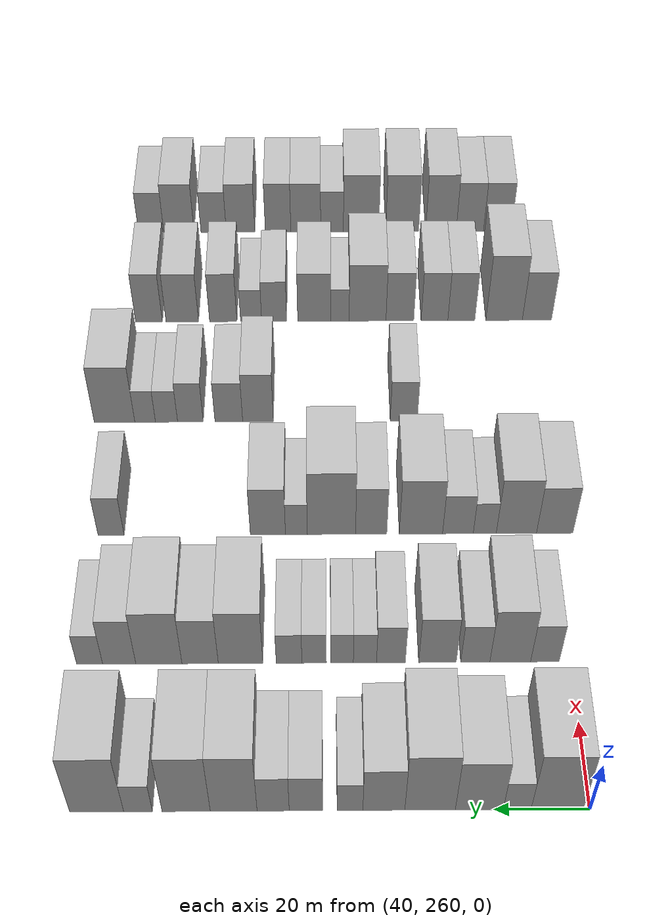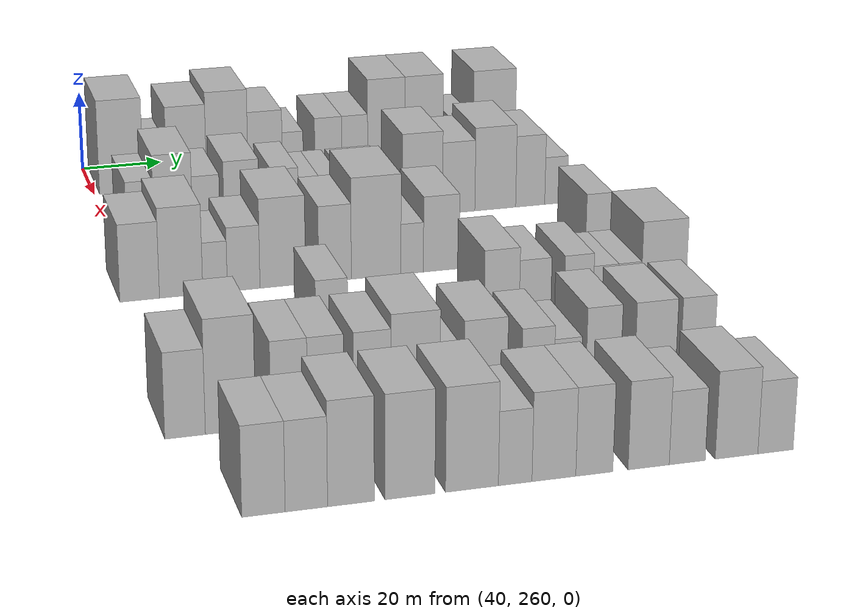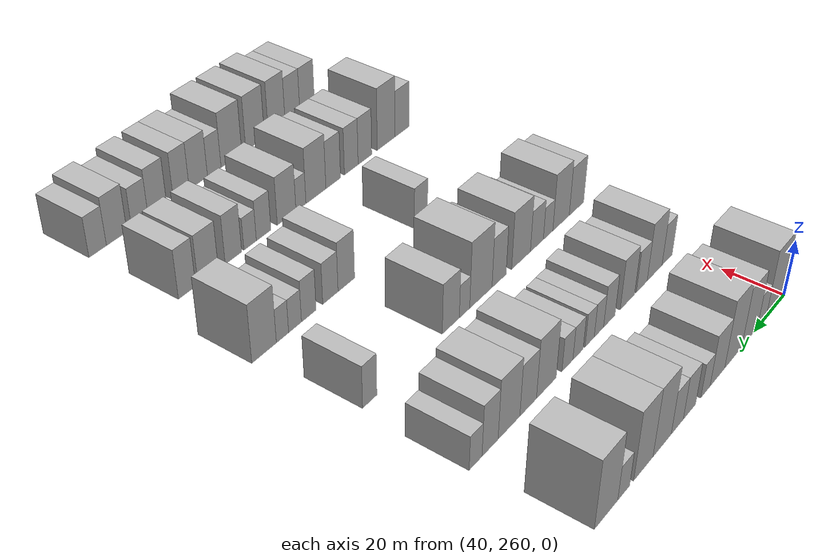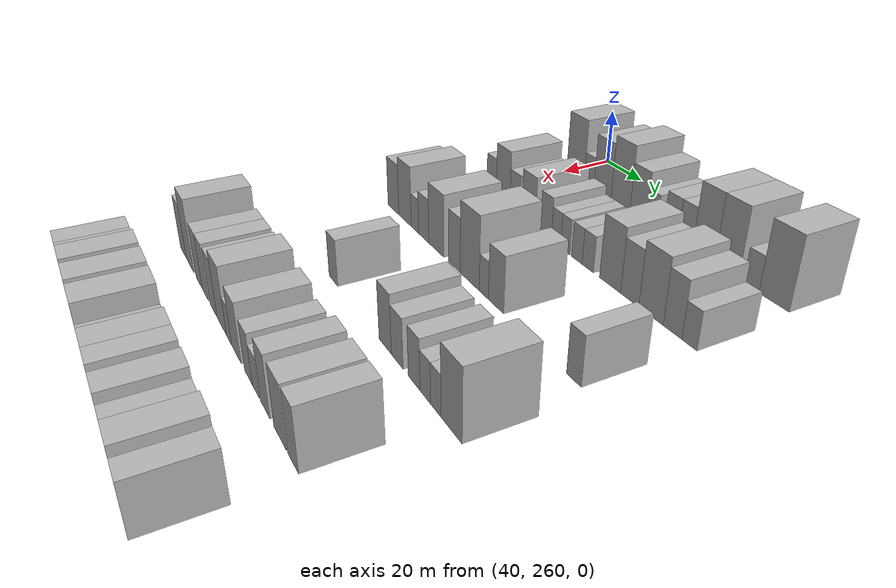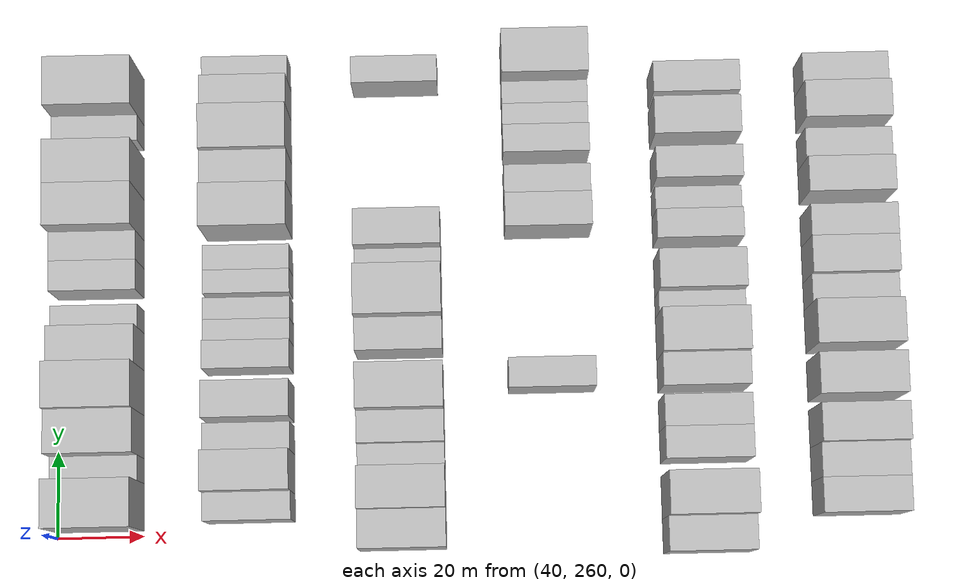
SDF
<sdf version="1.6">
 <world name="default">
  <model name="building_98">
   <static>1</static>
   <pose>50.0000 266.7937 0 0.000000 0.000000 0.000000</pose>
   <link name="link">
    <pose>0 0 12.00 0 0 0</pose>
    <collision name="collision"><geometry><box><size>20.0000 10.9603 24.0000</size></box></geometry></collision>
    <visual name="visual">
     <cast_shadows>0</cast_shadows>
     <geometry><box><size>20.0000 10.9603 24.0000</size></box></geometry>
     <material>
      <script>
       <uri>model://HANNAS_wall/materials/scripts</uri>
       <uri>model://HANNAS_wall/materials/textures</uri>
       <name>vrc/HANNAS_wall</name>
      </script>
     </material>
    </visual>
   </link>
  </model>
  <model name="building_99">
   <static>1</static>
   <pose>50.0000 275.1832 0 0.000000 0.000000 0.000000</pose>
   <link name="link">
    <pose>0 0 6.00 0 0 0</pose>
    <collision name="collision"><geometry><box><size>20.0000 5.8187 12.0000</size></box></geometry></collision>
    <visual name="visual">
     <cast_shadows>0</cast_shadows>
     <geometry><box><size>20.0000 5.8187 12.0000</size></box></geometry>
     <material>
      <script>
       <uri>model://HANNAS_wall/materials/scripts</uri>
       <uri>model://HANNAS_wall/materials/textures</uri>
       <name>vrc/HANNAS_wall</name>
      </script>
     </material>
    </visual>
   </link>
  </model>
  <model name="building_100">
   <static>1</static>
   <pose>50.0000 283.0935 0 0.000000 0.000000 0.000000</pose>
   <link name="link">
    <pose>0 0 10.50 0 0 0</pose>
    <collision name="collision"><geometry><box><size>20.0000 10.0018 21.0000</size></box></geometry></collision>
    <visual name="visual">
     <cast_shadows>0</cast_shadows>
     <geometry><box><size>20.0000 10.0018 21.0000</size></box></geometry>
     <material>
      <script>
       <uri>model://HANNAS_wall/materials/scripts</uri>
       <uri>model://HANNAS_wall/materials/textures</uri>
       <name>vrc/HANNAS_wall</name>
      </script>
     </material>
    </visual>
   </link>
  </model>
  <model name="building_101">
   <static>1</static>
   <pose>50.0000 293.3723 0 0.000000 0.000000 0.000000</pose>
   <link name="link">
    <pose>0 0 12.00 0 0 0</pose>
    <collision name="collision"><geometry><box><size>20.0000 10.5558 24.0000</size></box></geometry></collision>
    <visual name="visual">
     <cast_shadows>0</cast_shadows>
     <geometry><box><size>20.0000 10.5558 24.0000</size></box></geometry>
     <material>
      <script>
       <uri>model://HANNAS_wall/materials/scripts</uri>
       <uri>model://HANNAS_wall/materials/textures</uri>
       <name>vrc/HANNAS_wall</name>
      </script>
     </material>
    </visual>
   </link>
  </model>
  <model name="building_102">
   <static>1</static>
   <pose>50.0000 303.0368 0 0.000000 0.000000 0.000000</pose>
   <link name="link">
    <pose>0 0 9.00 0 0 0</pose>
    <collision name="collision"><geometry><box><size>20.0000 8.7731 18.0000</size></box></geometry></collision>
    <visual name="visual">
     <cast_shadows>0</cast_shadows>
     <geometry><box><size>20.0000 8.7731 18.0000</size></box></geometry>
     <material>
      <script>
       <uri>model://HANNAS_wall/materials/scripts</uri>
       <uri>model://HANNAS_wall/materials/textures</uri>
       <name>vrc/HANNAS_wall</name>
      </script>
     </material>
    </visual>
   </link>
  </model>
  <model name="building_103">
   <static>1</static>
   <pose>50.0000 310.1056 0 0.000000 0.000000 0.000000</pose>
   <link name="link">
    <pose>0 0 6.00 0 0 0</pose>
    <collision name="collision"><geometry><box><size>20.0000 5.3647 12.0000</size></box></geometry></collision>
    <visual name="visual">
     <cast_shadows>0</cast_shadows>
     <geometry><box><size>20.0000 5.3647 12.0000</size></box></geometry>
     <material>
      <script>
       <uri>model://HANNAS_wall/materials/scripts</uri>
       <uri>model://HANNAS_wall/materials/textures</uri>
       <name>vrc/HANNAS_wall</name>
      </script>
     </material>
    </visual>
   </link>
  </model>
  <model name="building_104">
   <static>1</static>
   <pose>50.0000 319.2848 0 0.000000 0.000000 0.000000</pose>
   <link name="link">
    <pose>0 0 7.50 0 0 0</pose>
    <collision name="collision"><geometry><box><size>20.0000 6.9936 15.0000</size></box></geometry></collision>
    <visual name="visual">
     <cast_shadows>0</cast_shadows>
     <geometry><box><size>20.0000 6.9936 15.0000</size></box></geometry>
     <material>
      <script>
       <uri>model://HANNAS_wall/materials/scripts</uri>
       <uri>model://HANNAS_wall/materials/textures</uri>
       <name>vrc/HANNAS_wall</name>
      </script>
     </material>
    </visual>
   </link>
  </model>
  <model name="building_105">
   <static>1</static>
   <pose>50.0000 326.1357 0 0.000000 0.000000 0.000000</pose>
   <link name="link">
    <pose>0 0 7.50 0 0 0</pose>
    <collision name="collision"><geometry><box><size>20.0000 6.7082 15.0000</size></box></geometry></collision>
    <visual name="visual">
     <cast_shadows>0</cast_shadows>
     <geometry><box><size>20.0000 6.7082 15.0000</size></box></geometry>
     <material>
      <script>
       <uri>model://HANNAS_wall/materials/scripts</uri>
       <uri>model://HANNAS_wall/materials/textures</uri>
       <name>vrc/HANNAS_wall</name>
      </script>
     </material>
    </visual>
   </link>
  </model>
  <model name="building_106">
   <static>1</static>
   <pose>50.0000 334.3753 0 0.000000 0.000000 0.000000</pose>
   <link name="link">
    <pose>0 0 12.00 0 0 0</pose>
    <collision name="collision"><geometry><box><size>20.0000 9.7709 24.0000</size></box></geometry></collision>
    <visual name="visual">
     <cast_shadows>0</cast_shadows>
     <geometry><box><size>20.0000 9.7709 24.0000</size></box></geometry>
     <material>
      <script>
       <uri>model://HANNAS_wall/materials/scripts</uri>
       <uri>model://HANNAS_wall/materials/textures</uri>
       <name>vrc/HANNAS_wall</name>
      </script>
     </material>
    </visual>
   </link>
  </model>
  <model name="building_107">
   <static>1</static>
   <pose>50.0000 344.2890 0 0.000000 0.000000 0.000000</pose>
   <link name="link">
    <pose>0 0 12.00 0 0 0</pose>
    <collision name="collision"><geometry><box><size>20.0000 10.0566 24.0000</size></box></geometry></collision>
    <visual name="visual">
     <cast_shadows>0</cast_shadows>
     <geometry><box><size>20.0000 10.0566 24.0000</size></box></geometry>
     <material>
      <script>
       <uri>model://HANNAS_wall/materials/scripts</uri>
       <uri>model://HANNAS_wall/materials/textures</uri>
       <name>vrc/HANNAS_wall</name>
      </script>
     </material>
    </visual>
   </link>
  </model>
  <model name="building_108">
   <static>1</static>
   <pose>50.0000 354.3158 0 0.000000 0.000000 0.000000</pose>
   <link name="link">
    <pose>0 0 6.00 0 0 0</pose>
    <collision name="collision"><geometry><box><size>20.0000 5.9970 12.0000</size></box></geometry></collision>
    <visual name="visual">
     <cast_shadows>0</cast_shadows>
     <geometry><box><size>20.0000 5.9970 12.0000</size></box></geometry>
     <material>
      <script>
       <uri>model://HANNAS_wall/materials/scripts</uri>
       <uri>model://HANNAS_wall/materials/textures</uri>
       <name>vrc/HANNAS_wall</name>
      </script>
     </material>
    </visual>
   </link>
  </model>
  <model name="building_109">
   <static>1</static>
   <pose>50.0000 362.9555 0 0.000000 0.000000 0.000000</pose>
   <link name="link">
    <pose>0 0 12.00 0 0 0</pose>
    <collision name="collision"><geometry><box><size>20.0000 11.2824 24.0000</size></box></geometry></collision>
    <visual name="visual">
     <cast_shadows>0</cast_shadows>
     <geometry><box><size>20.0000 11.2824 24.0000</size></box></geometry>
     <material>
      <script>
       <uri>model://HANNAS_wall/materials/scripts</uri>
       <uri>model://HANNAS_wall/materials/textures</uri>
       <name>vrc/HANNAS_wall</name>
      </script>
     </material>
    </visual>
   </link>
  </model>
  <model name="building_228">
   <static>1</static>
   <pose>85.0000 265.8231 0 0.000000 0.000000 0.000000</pose>
   <link name="link">
    <pose>0 0 7.50 0 0 0</pose>
    <collision name="collision"><geometry><box><size>20.0000 6.4290 15.0000</size></box></geometry></collision>
    <visual name="visual">
     <cast_shadows>0</cast_shadows>
     <geometry><box><size>20.0000 6.4290 15.0000</size></box></geometry>
     <material>
      <script>
       <uri>model://HANNAS_wall/materials/scripts</uri>
       <uri>model://HANNAS_wall/materials/textures</uri>
       <name>vrc/HANNAS_wall</name>
      </script>
     </material>
    </visual>
   </link>
  </model>
  <model name="building_229">
   <static>1</static>
   <pose>85.0000 273.6095 0 0.000000 0.000000 0.000000</pose>
   <link name="link">
    <pose>0 0 10.50 0 0 0</pose>
    <collision name="collision"><geometry><box><size>20.0000 9.1437 21.0000</size></box></geometry></collision>
    <visual name="visual">
     <cast_shadows>0</cast_shadows>
     <geometry><box><size>20.0000 9.1437 21.0000</size></box></geometry>
     <material>
      <script>
       <uri>model://HANNAS_wall/materials/scripts</uri>
       <uri>model://HANNAS_wall/materials/textures</uri>
       <name>vrc/HANNAS_wall</name>
      </script>
     </material>
    </visual>
   </link>
  </model>
  <model name="building_230">
   <static>1</static>
   <pose>85.0000 281.4469 0 0.000000 0.000000 0.000000</pose>
   <link name="link">
    <pose>0 0 7.50 0 0 0</pose>
    <collision name="collision"><geometry><box><size>20.0000 6.5311 15.0000</size></box></geometry></collision>
    <visual name="visual">
     <cast_shadows>0</cast_shadows>
     <geometry><box><size>20.0000 6.5311 15.0000</size></box></geometry>
     <material>
      <script>
       <uri>model://HANNAS_wall/materials/scripts</uri>
       <uri>model://HANNAS_wall/materials/textures</uri>
       <name>vrc/HANNAS_wall</name>
      </script>
     </material>
    </visual>
   </link>
  </model>
  <model name="building_231">
   <static>1</static>
   <pose>85.0000 289.9295 0 0.000000 0.000000 0.000000</pose>
   <link name="link">
    <pose>0 0 9.00 0 0 0</pose>
    <collision name="collision"><geometry><box><size>20.0000 8.4343 18.0000</size></box></geometry></collision>
    <visual name="visual">
     <cast_shadows>0</cast_shadows>
     <geometry><box><size>20.0000 8.4343 18.0000</size></box></geometry>
     <material>
      <script>
       <uri>model://HANNAS_wall/materials/scripts</uri>
       <uri>model://HANNAS_wall/materials/textures</uri>
       <name>vrc/HANNAS_wall</name>
      </script>
     </material>
    </visual>
   </link>
  </model>
  <model name="building_232">
   <static>1</static>
   <pose>85.0000 300.3838 0 0.000000 0.000000 0.000000</pose>
   <link name="link">
    <pose>0 0 7.50 0 0 0</pose>
    <collision name="collision"><geometry><box><size>20.0000 6.4742 15.0000</size></box></geometry></collision>
    <visual name="visual">
     <cast_shadows>0</cast_shadows>
     <geometry><box><size>20.0000 6.4742 15.0000</size></box></geometry>
     <material>
      <script>
       <uri>model://HANNAS_wall/materials/scripts</uri>
       <uri>model://HANNAS_wall/materials/textures</uri>
       <name>vrc/HANNAS_wall</name>
      </script>
     </material>
    </visual>
   </link>
  </model>
  <model name="building_233">
   <static>1</static>
   <pose>85.0000 306.2199 0 0.000000 0.000000 0.000000</pose>
   <link name="link">
    <pose>0 0 6.00 0 0 0</pose>
    <collision name="collision"><geometry><box><size>20.0000 5.1980 12.0000</size></box></geometry></collision>
    <visual name="visual">
     <cast_shadows>0</cast_shadows>
     <geometry><box><size>20.0000 5.1980 12.0000</size></box></geometry>
     <material>
      <script>
       <uri>model://HANNAS_wall/materials/scripts</uri>
       <uri>model://HANNAS_wall/materials/textures</uri>
       <name>vrc/HANNAS_wall</name>
      </script>
     </material>
    </visual>
   </link>
  </model>
  <model name="building_234">
   <static>1</static>
   <pose>85.0000 311.3299 0 0.000000 0.000000 0.000000</pose>
   <link name="link">
    <pose>0 0 6.00 0 0 0</pose>
    <collision name="collision"><geometry><box><size>20.0000 5.0220 12.0000</size></box></geometry></collision>
    <visual name="visual">
     <cast_shadows>0</cast_shadows>
     <geometry><box><size>20.0000 5.0220 12.0000</size></box></geometry>
     <material>
      <script>
       <uri>model://HANNAS_wall/materials/scripts</uri>
       <uri>model://HANNAS_wall/materials/textures</uri>
       <name>vrc/HANNAS_wall</name>
      </script>
     </material>
    </visual>
   </link>
  </model>
  <model name="building_235">
   <static>1</static>
   <pose>85.0000 317.5918 0 0.000000 0.000000 0.000000</pose>
   <link name="link">
    <pose>0 0 6.00 0 0 0</pose>
    <collision name="collision"><geometry><box><size>20.0000 5.5017 12.0000</size></box></geometry></collision>
    <visual name="visual">
     <cast_shadows>0</cast_shadows>
     <geometry><box><size>20.0000 5.5017 12.0000</size></box></geometry>
     <material>
      <script>
       <uri>model://HANNAS_wall/materials/scripts</uri>
       <uri>model://HANNAS_wall/materials/textures</uri>
       <name>vrc/HANNAS_wall</name>
      </script>
     </material>
    </visual>
   </link>
  </model>
  <model name="building_236">
   <static>1</static>
   <pose>85.0000 323.2128 0 0.000000 0.000000 0.000000</pose>
   <link name="link">
    <pose>0 0 6.00 0 0 0</pose>
    <collision name="collision"><geometry><box><size>20.0000 5.7402 12.0000</size></box></geometry></collision>
    <visual name="visual">
     <cast_shadows>0</cast_shadows>
     <geometry><box><size>20.0000 5.7402 12.0000</size></box></geometry>
     <material>
      <script>
       <uri>model://HANNAS_wall/materials/scripts</uri>
       <uri>model://HANNAS_wall/materials/textures</uri>
       <name>vrc/HANNAS_wall</name>
      </script>
     </material>
    </visual>
   </link>
  </model>
  <model name="building_237">
   <static>1</static>
   <pose>85.0000 334.0777 0 0.000000 0.000000 0.000000</pose>
   <link name="link">
    <pose>0 0 10.50 0 0 0</pose>
    <collision name="collision"><geometry><box><size>20.0000 9.9896 21.0000</size></box></geometry></collision>
    <visual name="visual">
     <cast_shadows>0</cast_shadows>
     <geometry><box><size>20.0000 9.9896 21.0000</size></box></geometry>
     <material>
      <script>
       <uri>model://HANNAS_wall/materials/scripts</uri>
       <uri>model://HANNAS_wall/materials/textures</uri>
       <name>vrc/HANNAS_wall</name>
      </script>
     </material>
    </visual>
   </link>
  </model>
  <model name="building_238">
   <static>1</static>
   <pose>85.0000 343.1449 0 0.000000 0.000000 0.000000</pose>
   <link name="link">
    <pose>0 0 9.00 0 0 0</pose>
    <collision name="collision"><geometry><box><size>20.0000 8.1449 18.0000</size></box></geometry></collision>
    <visual name="visual">
     <cast_shadows>0</cast_shadows>
     <geometry><box><size>20.0000 8.1449 18.0000</size></box></geometry>
     <material>
      <script>
       <uri>model://HANNAS_wall/materials/scripts</uri>
       <uri>model://HANNAS_wall/materials/textures</uri>
       <name>vrc/HANNAS_wall</name>
      </script>
     </material>
    </visual>
   </link>
  </model>
  <model name="building_239">
   <static>1</static>
   <pose>85.0000 352.3883 0 0.000000 0.000000 0.000000</pose>
   <link name="link">
    <pose>0 0 10.50 0 0 0</pose>
    <collision name="collision"><geometry><box><size>20.0000 10.3419 21.0000</size></box></geometry></collision>
    <visual name="visual">
     <cast_shadows>0</cast_shadows>
     <geometry><box><size>20.0000 10.3419 21.0000</size></box></geometry>
     <material>
      <script>
       <uri>model://HANNAS_wall/materials/scripts</uri>
       <uri>model://HANNAS_wall/materials/textures</uri>
       <name>vrc/HANNAS_wall</name>
      </script>
     </material>
    </visual>
   </link>
  </model>
  <model name="building_240">
   <static>1</static>
   <pose>85.0000 361.2696 0 0.000000 0.000000 0.000000</pose>
   <link name="link">
    <pose>0 0 9.00 0 0 0</pose>
    <collision name="collision"><geometry><box><size>20.0000 7.4207 18.0000</size></box></geometry></collision>
    <visual name="visual">
     <cast_shadows>0</cast_shadows>
     <geometry><box><size>20.0000 7.4207 18.0000</size></box></geometry>
     <material>
      <script>
       <uri>model://HANNAS_wall/materials/scripts</uri>
       <uri>model://HANNAS_wall/materials/textures</uri>
       <name>vrc/HANNAS_wall</name>
      </script>
     </material>
    </visual>
   </link>
  </model>
  <model name="building_241">
   <static>1</static>
   <pose>85.0000 367.8834 0 0.000000 0.000000 0.000000</pose>
   <link name="link">
    <pose>0 0 6.00 0 0 0</pose>
    <collision name="collision"><geometry><box><size>20.0000 5.8069 12.0000</size></box></geometry></collision>
    <visual name="visual">
     <cast_shadows>0</cast_shadows>
     <geometry><box><size>20.0000 5.8069 12.0000</size></box></geometry>
     <material>
      <script>
       <uri>model://HANNAS_wall/materials/scripts</uri>
       <uri>model://HANNAS_wall/materials/textures</uri>
       <name>vrc/HANNAS_wall</name>
      </script>
     </material>
    </visual>
   </link>
  </model>
  <model name="building_338">
   <static>1</static>
   <pose>120.0000 259.9100 0 0.000000 0.000000 0.000000</pose>
   <link name="link">
    <pose>0 0 9.00 0 0 0</pose>
    <collision name="collision"><geometry><box><size>20.0000 8.7608 18.0000</size></box></geometry></collision>
    <visual name="visual">
     <cast_shadows>0</cast_shadows>
     <geometry><box><size>20.0000 8.7608 18.0000</size></box></geometry>
     <material>
      <script>
       <uri>model://HANNAS_wall/materials/scripts</uri>
       <uri>model://HANNAS_wall/materials/textures</uri>
       <name>vrc/HANNAS_wall</name>
      </script>
     </material>
    </visual>
   </link>
  </model>
  <model name="building_339">
   <static>1</static>
   <pose>120.0000 269.1196 0 0.000000 0.000000 0.000000</pose>
   <link name="link">
    <pose>0 0 10.50 0 0 0</pose>
    <collision name="collision"><geometry><box><size>20.0000 9.6585 21.0000</size></box></geometry></collision>
    <visual name="visual">
     <cast_shadows>0</cast_shadows>
     <geometry><box><size>20.0000 9.6585 21.0000</size></box></geometry>
     <material>
      <script>
       <uri>model://HANNAS_wall/materials/scripts</uri>
       <uri>model://HANNAS_wall/materials/textures</uri>
       <name>vrc/HANNAS_wall</name>
      </script>
     </material>
    </visual>
   </link>
  </model>
  <model name="building_340">
   <static>1</static>
   <pose>120.0000 276.7071 0 0.000000 0.000000 0.000000</pose>
   <link name="link">
    <pose>0 0 6.00 0 0 0</pose>
    <collision name="collision"><geometry><box><size>20.0000 5.5166 12.0000</size></box></geometry></collision>
    <visual name="visual">
     <cast_shadows>0</cast_shadows>
     <geometry><box><size>20.0000 5.5166 12.0000</size></box></geometry>
     <material>
      <script>
       <uri>model://HANNAS_wall/materials/scripts</uri>
       <uri>model://HANNAS_wall/materials/textures</uri>
       <name>vrc/HANNAS_wall</name>
      </script>
     </material>
    </visual>
   </link>
  </model>
  <model name="building_341">
   <static>1</static>
   <pose>120.0000 283.1479 0 0.000000 0.000000 0.000000</pose>
   <link name="link">
    <pose>0 0 7.50 0 0 0</pose>
    <collision name="collision"><geometry><box><size>20.0000 7.3648 15.0000</size></box></geometry></collision>
    <visual name="visual">
     <cast_shadows>0</cast_shadows>
     <geometry><box><size>20.0000 7.3648 15.0000</size></box></geometry>
     <material>
      <script>
       <uri>model://HANNAS_wall/materials/scripts</uri>
       <uri>model://HANNAS_wall/materials/textures</uri>
       <name>vrc/HANNAS_wall</name>
      </script>
     </material>
    </visual>
   </link>
  </model>
  <model name="building_342">
   <static>1</static>
   <pose>120.0000 292.0150 0 0.000000 0.000000 0.000000</pose>
   <link name="link">
    <pose>0 0 10.50 0 0 0</pose>
    <collision name="collision"><geometry><box><size>20.0000 10.3695 21.0000</size></box></geometry></collision>
    <visual name="visual">
     <cast_shadows>0</cast_shadows>
     <geometry><box><size>20.0000 10.3695 21.0000</size></box></geometry>
     <material>
      <script>
       <uri>model://HANNAS_wall/materials/scripts</uri>
       <uri>model://HANNAS_wall/materials/textures</uri>
       <name>vrc/HANNAS_wall</name>
      </script>
     </material>
    </visual>
   </link>
  </model>
  <model name="building_343">
   <static>1</static>
   <pose>120.0000 303.9533 0 0.000000 0.000000 0.000000</pose>
   <link name="link">
    <pose>0 0 9.00 0 0 0</pose>
    <collision name="collision"><geometry><box><size>20.0000 7.5070 18.0000</size></box></geometry></collision>
    <visual name="visual">
     <cast_shadows>0</cast_shadows>
     <geometry><box><size>20.0000 7.5070 18.0000</size></box></geometry>
     <material>
      <script>
       <uri>model://HANNAS_wall/materials/scripts</uri>
       <uri>model://HANNAS_wall/materials/textures</uri>
       <name>vrc/HANNAS_wall</name>
      </script>
     </material>
    </visual>
   </link>
  </model>
  <model name="building_344">
   <static>1</static>
   <pose>120.0000 313.4700 0 0.000000 0.000000 0.000000</pose>
   <link name="link">
    <pose>0 0 12.00 0 0 0</pose>
    <collision name="collision"><geometry><box><size>20.0000 11.5264 24.0000</size></box></geometry></collision>
    <visual name="visual">
     <cast_shadows>0</cast_shadows>
     <geometry><box><size>20.0000 11.5264 24.0000</size></box></geometry>
     <material>
      <script>
       <uri>model://HANNAS_wall/materials/scripts</uri>
       <uri>model://HANNAS_wall/materials/textures</uri>
       <name>vrc/HANNAS_wall</name>
      </script>
     </material>
    </visual>
   </link>
  </model>
  <model name="building_345">
   <static>1</static>
   <pose>120.0000 321.8547 0 0.000000 0.000000 0.000000</pose>
   <link name="link">
    <pose>0 0 6.00 0 0 0</pose>
    <collision name="collision"><geometry><box><size>20.0000 5.2431 12.0000</size></box></geometry></collision>
    <visual name="visual">
     <cast_shadows>0</cast_shadows>
     <geometry><box><size>20.0000 5.2431 12.0000</size></box></geometry>
     <material>
      <script>
       <uri>model://HANNAS_wall/materials/scripts</uri>
       <uri>model://HANNAS_wall/materials/textures</uri>
       <name>vrc/HANNAS_wall</name>
      </script>
     </material>
    </visual>
   </link>
  </model>
  <model name="building_346">
   <static>1</static>
   <pose>120.0000 328.6796 0 0.000000 0.000000 0.000000</pose>
   <link name="link">
    <pose>0 0 9.00 0 0 0</pose>
    <collision name="collision"><geometry><box><size>20.0000 8.4067 18.0000</size></box></geometry></collision>
    <visual name="visual">
     <cast_shadows>0</cast_shadows>
     <geometry><box><size>20.0000 8.4067 18.0000</size></box></geometry>
     <material>
      <script>
       <uri>model://HANNAS_wall/materials/scripts</uri>
       <uri>model://HANNAS_wall/materials/textures</uri>
       <name>vrc/HANNAS_wall</name>
      </script>
     </material>
    </visual>
   </link>
  </model>
  <model name="building_347">
   <static>1</static>
   <pose>120.0000 366.2317 0 0.000000 0.000000 0.000000</pose>
   <link name="link">
    <pose>0 0 7.50 0 0 0</pose>
    <collision name="collision"><geometry><box><size>20.0000 6.2325 15.0000</size></box></geometry></collision>
    <visual name="visual">
     <cast_shadows>0</cast_shadows>
     <geometry><box><size>20.0000 6.2325 15.0000</size></box></geometry>
     <material>
      <script>
       <uri>model://HANNAS_wall/materials/scripts</uri>
       <uri>model://HANNAS_wall/materials/textures</uri>
       <name>vrc/HANNAS_wall</name>
      </script>
     </material>
    </visual>
   </link>
  </model>
  <model name="building_463">
   <static>1</static>
   <pose>155.0000 294.7608 0 0.000000 0.000000 0.000000</pose>
   <link name="link">
    <pose>0 0 7.50 0 0 0</pose>
    <collision name="collision"><geometry><box><size>20.0000 6.8893 15.0000</size></box></geometry></collision>
    <visual name="visual">
     <cast_shadows>0</cast_shadows>
     <geometry><box><size>20.0000 6.8893 15.0000</size></box></geometry>
     <material>
      <script>
       <uri>model://HANNAS_wall/materials/scripts</uri>
       <uri>model://HANNAS_wall/materials/textures</uri>
       <name>vrc/HANNAS_wall</name>
      </script>
     </material>
    </visual>
   </link>
  </model>
  <model name="building_464">
   <static>1</static>
   <pose>155.0000 331.9331 0 0.000000 0.000000 0.000000</pose>
   <link name="link">
    <pose>0 0 9.00 0 0 0</pose>
    <collision name="collision"><geometry><box><size>20.0000 7.8184 18.0000</size></box></geometry></collision>
    <visual name="visual">
     <cast_shadows>0</cast_shadows>
     <geometry><box><size>20.0000 7.8184 18.0000</size></box></geometry>
     <material>
      <script>
       <uri>model://HANNAS_wall/materials/scripts</uri>
       <uri>model://HANNAS_wall/materials/textures</uri>
       <name>vrc/HANNAS_wall</name>
      </script>
     </material>
    </visual>
   </link>
  </model>
  <model name="building_465">
   <static>1</static>
   <pose>155.0000 339.3729 0 0.000000 0.000000 0.000000</pose>
   <link name="link">
    <pose>0 0 7.50 0 0 0</pose>
    <collision name="collision"><geometry><box><size>20.0000 7.0613 15.0000</size></box></geometry></collision>
    <visual name="visual">
     <cast_shadows>0</cast_shadows>
     <geometry><box><size>20.0000 7.0613 15.0000</size></box></geometry>
     <material>
      <script>
       <uri>model://HANNAS_wall/materials/scripts</uri>
       <uri>model://HANNAS_wall/materials/textures</uri>
       <name>vrc/HANNAS_wall</name>
      </script>
     </material>
    </visual>
   </link>
  </model>
  <model name="building_466">
   <static>1</static>
   <pose>155.0000 349.1730 0 0.000000 0.000000 0.000000</pose>
   <link name="link">
    <pose>0 0 7.50 0 0 0</pose>
    <collision name="collision"><geometry><box><size>20.0000 6.5388 15.0000</size></box></geometry></collision>
    <visual name="visual">
     <cast_shadows>0</cast_shadows>
     <geometry><box><size>20.0000 6.5388 15.0000</size></box></geometry>
     <material>
      <script>
       <uri>model://HANNAS_wall/materials/scripts</uri>
       <uri>model://HANNAS_wall/materials/textures</uri>
       <name>vrc/HANNAS_wall</name>
      </script>
     </material>
    </visual>
   </link>
  </model>
  <model name="building_467">
   <static>1</static>
   <pose>155.0000 355.2627 0 0.000000 0.000000 0.000000</pose>
   <link name="link">
    <pose>0 0 6.00 0 0 0</pose>
    <collision name="collision"><geometry><box><size>20.0000 5.6404 12.0000</size></box></geometry></collision>
    <visual name="visual">
     <cast_shadows>0</cast_shadows>
     <geometry><box><size>20.0000 5.6404 12.0000</size></box></geometry>
     <material>
      <script>
       <uri>model://HANNAS_wall/materials/scripts</uri>
       <uri>model://HANNAS_wall/materials/textures</uri>
       <name>vrc/HANNAS_wall</name>
      </script>
     </material>
    </visual>
   </link>
  </model>
  <model name="building_468">
   <static>1</static>
   <pose>155.0000 360.7143 0 0.000000 0.000000 0.000000</pose>
   <link name="link">
    <pose>0 0 6.00 0 0 0</pose>
    <collision name="collision"><geometry><box><size>20.0000 5.2629 12.0000</size></box></geometry></collision>
    <visual name="visual">
     <cast_shadows>0</cast_shadows>
     <geometry><box><size>20.0000 5.2629 12.0000</size></box></geometry>
     <material>
      <script>
       <uri>model://HANNAS_wall/materials/scripts</uri>
       <uri>model://HANNAS_wall/materials/textures</uri>
       <name>vrc/HANNAS_wall</name>
      </script>
     </material>
    </visual>
   </link>
  </model>
  <model name="building_469">
   <static>1</static>
   <pose>155.0000 368.5051 0 0.000000 0.000000 0.000000</pose>
   <link name="link">
    <pose>0 0 10.50 0 0 0</pose>
    <collision name="collision"><geometry><box><size>20.0000 10.3186 21.0000</size></box></geometry></collision>
    <visual name="visual">
     <cast_shadows>0</cast_shadows>
     <geometry><box><size>20.0000 10.3186 21.0000</size></box></geometry>
     <material>
      <script>
       <uri>model://HANNAS_wall/materials/scripts</uri>
       <uri>model://HANNAS_wall/materials/textures</uri>
       <name>vrc/HANNAS_wall</name>
      </script>
     </material>
    </visual>
   </link>
  </model>
  <model name="building_578">
   <static>1</static>
   <pose>190.0000 257.3385 0 0.000000 0.000000 0.000000</pose>
   <link name="link">
    <pose>0 0 9.00 0 0 0</pose>
    <collision name="collision"><geometry><box><size>20.0000 7.9105 18.0000</size></box></geometry></collision>
    <visual name="visual">
     <cast_shadows>0</cast_shadows>
     <geometry><box><size>20.0000 7.9105 18.0000</size></box></geometry>
     <material>
      <script>
       <uri>model://HANNAS_wall/materials/scripts</uri>
       <uri>model://HANNAS_wall/materials/textures</uri>
       <name>vrc/HANNAS_wall</name>
      </script>
     </material>
    </visual>
   </link>
  </model>
  <model name="building_579">
   <static>1</static>
   <pose>190.0000 266.2223 0 0.000000 0.000000 0.000000</pose>
   <link name="link">
    <pose>0 0 12.00 0 0 0</pose>
    <collision name="collision"><geometry><box><size>20.0000 9.8571 24.0000</size></box></geometry></collision>
    <visual name="visual">
     <cast_shadows>0</cast_shadows>
     <geometry><box><size>20.0000 9.8571 24.0000</size></box></geometry>
     <material>
      <script>
       <uri>model://HANNAS_wall/materials/scripts</uri>
       <uri>model://HANNAS_wall/materials/textures</uri>
       <name>vrc/HANNAS_wall</name>
      </script>
     </material>
    </visual>
   </link>
  </model>
  <model name="building_580">
   <static>1</static>
   <pose>190.0000 277.8046 0 0.000000 0.000000 0.000000</pose>
   <link name="link">
    <pose>0 0 9.00 0 0 0</pose>
    <collision name="collision"><geometry><box><size>20.0000 7.3076 18.0000</size></box></geometry></collision>
    <visual name="visual">
     <cast_shadows>0</cast_shadows>
     <geometry><box><size>20.0000 7.3076 18.0000</size></box></geometry>
     <material>
      <script>
       <uri>model://HANNAS_wall/materials/scripts</uri>
       <uri>model://HANNAS_wall/materials/textures</uri>
       <name>vrc/HANNAS_wall</name>
      </script>
     </material>
    </visual>
   </link>
  </model>
  <model name="building_581">
   <static>1</static>
   <pose>190.0000 285.0741 0 0.000000 0.000000 0.000000</pose>
   <link name="link">
    <pose>0 0 9.00 0 0 0</pose>
    <collision name="collision"><geometry><box><size>20.0000 7.2314 18.0000</size></box></geometry></collision>
    <visual name="visual">
     <cast_shadows>0</cast_shadows>
     <geometry><box><size>20.0000 7.2314 18.0000</size></box></geometry>
     <material>
      <script>
       <uri>model://HANNAS_wall/materials/scripts</uri>
       <uri>model://HANNAS_wall/materials/textures</uri>
       <name>vrc/HANNAS_wall</name>
      </script>
     </material>
    </visual>
   </link>
  </model>
  <model name="building_582">
   <static>1</static>
   <pose>190.0000 294.4544 0 0.000000 0.000000 0.000000</pose>
   <link name="link">
    <pose>0 0 9.00 0 0 0</pose>
    <collision name="collision"><geometry><box><size>20.0000 7.5292 18.0000</size></box></geometry></collision>
    <visual name="visual">
     <cast_shadows>0</cast_shadows>
     <geometry><box><size>20.0000 7.5292 18.0000</size></box></geometry>
     <material>
      <script>
       <uri>model://HANNAS_wall/materials/scripts</uri>
       <uri>model://HANNAS_wall/materials/textures</uri>
       <name>vrc/HANNAS_wall</name>
      </script>
     </material>
    </visual>
   </link>
  </model>
  <model name="building_583">
   <static>1</static>
   <pose>190.0000 303.2090 0 0.000000 0.000000 0.000000</pose>
   <link name="link">
    <pose>0 0 10.50 0 0 0</pose>
    <collision name="collision"><geometry><box><size>20.0000 9.9799 21.0000</size></box></geometry></collision>
    <visual name="visual">
     <cast_shadows>0</cast_shadows>
     <geometry><box><size>20.0000 9.9799 21.0000</size></box></geometry>
     <material>
      <script>
       <uri>model://HANNAS_wall/materials/scripts</uri>
       <uri>model://HANNAS_wall/materials/textures</uri>
       <name>vrc/HANNAS_wall</name>
      </script>
     </material>
    </visual>
   </link>
  </model>
  <model name="building_584">
   <static>1</static>
   <pose>190.0000 310.6415 0 0.000000 0.000000 0.000000</pose>
   <link name="link">
    <pose>0 0 6.00 0 0 0</pose>
    <collision name="collision"><geometry><box><size>20.0000 4.8851 12.0000</size></box></geometry></collision>
    <visual name="visual">
     <cast_shadows>0</cast_shadows>
     <geometry><box><size>20.0000 4.8851 12.0000</size></box></geometry>
     <material>
      <script>
       <uri>model://HANNAS_wall/materials/scripts</uri>
       <uri>model://HANNAS_wall/materials/textures</uri>
       <name>vrc/HANNAS_wall</name>
      </script>
     </material>
    </visual>
   </link>
  </model>
  <model name="building_585">
   <static>1</static>
   <pose>190.0000 317.5747 0 0.000000 0.000000 0.000000</pose>
   <link name="link">
    <pose>0 0 9.00 0 0 0</pose>
    <collision name="collision"><geometry><box><size>20.0000 8.9813 18.0000</size></box></geometry></collision>
    <visual name="visual">
     <cast_shadows>0</cast_shadows>
     <geometry><box><size>20.0000 8.9813 18.0000</size></box></geometry>
     <material>
      <script>
       <uri>model://HANNAS_wall/materials/scripts</uri>
       <uri>model://HANNAS_wall/materials/textures</uri>
       <name>vrc/HANNAS_wall</name>
      </script>
     </material>
    </visual>
   </link>
  </model>
  <model name="building_586">
   <static>1</static>
   <pose>190.0000 328.4454 0 0.000000 0.000000 0.000000</pose>
   <link name="link">
    <pose>0 0 7.50 0 0 0</pose>
    <collision name="collision"><geometry><box><size>20.0000 6.7600 15.0000</size></box></geometry></collision>
    <visual name="visual">
     <cast_shadows>0</cast_shadows>
     <geometry><box><size>20.0000 6.7600 15.0000</size></box></geometry>
     <material>
      <script>
       <uri>model://HANNAS_wall/materials/scripts</uri>
       <uri>model://HANNAS_wall/materials/textures</uri>
       <name>vrc/HANNAS_wall</name>
      </script>
     </material>
    </visual>
   </link>
  </model>
  <model name="building_587">
   <static>1</static>
   <pose>190.0000 334.6692 0 0.000000 0.000000 0.000000</pose>
   <link name="link">
    <pose>0 0 6.00 0 0 0</pose>
    <collision name="collision"><geometry><box><size>20.0000 5.6876 12.0000</size></box></geometry></collision>
    <visual name="visual">
     <cast_shadows>0</cast_shadows>
     <geometry><box><size>20.0000 5.6876 12.0000</size></box></geometry>
     <material>
      <script>
       <uri>model://HANNAS_wall/materials/scripts</uri>
       <uri>model://HANNAS_wall/materials/textures</uri>
       <name>vrc/HANNAS_wall</name>
      </script>
     </material>
    </visual>
   </link>
  </model>
  <model name="building_588">
   <static>1</static>
   <pose>190.0000 342.2003 0 0.000000 0.000000 0.000000</pose>
   <link name="link">
    <pose>0 0 9.00 0 0 0</pose>
    <collision name="collision"><geometry><box><size>20.0000 7.3746 18.0000</size></box></geometry></collision>
    <visual name="visual">
     <cast_shadows>0</cast_shadows>
     <geometry><box><size>20.0000 7.3746 18.0000</size></box></geometry>
     <material>
      <script>
       <uri>model://HANNAS_wall/materials/scripts</uri>
       <uri>model://HANNAS_wall/materials/textures</uri>
       <name>vrc/HANNAS_wall</name>
      </script>
     </material>
    </visual>
   </link>
  </model>
  <model name="building_589">
   <static>1</static>
   <pose>190.0000 353.2803 0 0.000000 0.000000 0.000000</pose>
   <link name="link">
    <pose>0 0 9.00 0 0 0</pose>
    <collision name="collision"><geometry><box><size>20.0000 8.7853 18.0000</size></box></geometry></collision>
    <visual name="visual">
     <cast_shadows>0</cast_shadows>
     <geometry><box><size>20.0000 8.7853 18.0000</size></box></geometry>
     <material>
      <script>
       <uri>model://HANNAS_wall/materials/scripts</uri>
       <uri>model://HANNAS_wall/materials/textures</uri>
       <name>vrc/HANNAS_wall</name>
      </script>
     </material>
    </visual>
   </link>
  </model>
  <model name="building_590">
   <static>1</static>
   <pose>190.0000 362.2843 0 0.000000 0.000000 0.000000</pose>
   <link name="link">
    <pose>0 0 9.00 0 0 0</pose>
    <collision name="collision"><geometry><box><size>20.0000 7.2227 18.0000</size></box></geometry></collision>
    <visual name="visual">
     <cast_shadows>0</cast_shadows>
     <geometry><box><size>20.0000 7.2227 18.0000</size></box></geometry>
     <material>
      <script>
       <uri>model://HANNAS_wall/materials/scripts</uri>
       <uri>model://HANNAS_wall/materials/textures</uri>
       <name>vrc/HANNAS_wall</name>
      </script>
     </material>
    </visual>
   </link>
  </model>
  <model name="building_716">
   <static>1</static>
   <pose>225.0000 265.2340 0 0.000000 0.000000 0.000000</pose>
   <link name="link">
    <pose>0 0 9.00 0 0 0</pose>
    <collision name="collision"><geometry><box><size>20.0000 7.9551 18.0000</size></box></geometry></collision>
    <visual name="visual">
     <cast_shadows>0</cast_shadows>
     <geometry><box><size>20.0000 7.9551 18.0000</size></box></geometry>
     <material>
      <script>
       <uri>model://HANNAS_wall/materials/scripts</uri>
       <uri>model://HANNAS_wall/materials/textures</uri>
       <name>vrc/HANNAS_wall</name>
      </script>
     </material>
    </visual>
   </link>
  </model>
  <model name="building_717">
   <static>1</static>
   <pose>225.0000 273.1246 0 0.000000 0.000000 0.000000</pose>
   <link name="link">
    <pose>0 0 9.00 0 0 0</pose>
    <collision name="collision"><geometry><box><size>20.0000 7.8261 18.0000</size></box></geometry></collision>
    <visual name="visual">
     <cast_shadows>0</cast_shadows>
     <geometry><box><size>20.0000 7.8261 18.0000</size></box></geometry>
     <material>
      <script>
       <uri>model://HANNAS_wall/materials/scripts</uri>
       <uri>model://HANNAS_wall/materials/textures</uri>
       <name>vrc/HANNAS_wall</name>
      </script>
     </material>
    </visual>
   </link>
  </model>
  <model name="building_718">
   <static>1</static>
   <pose>225.0000 281.3969 0 0.000000 0.000000 0.000000</pose>
   <link name="link">
    <pose>0 0 10.50 0 0 0</pose>
    <collision name="collision"><geometry><box><size>20.0000 8.7186 21.0000</size></box></geometry></collision>
    <visual name="visual">
     <cast_shadows>0</cast_shadows>
     <geometry><box><size>20.0000 8.7186 21.0000</size></box></geometry>
     <material>
      <script>
       <uri>model://HANNAS_wall/materials/scripts</uri>
       <uri>model://HANNAS_wall/materials/textures</uri>
       <name>vrc/HANNAS_wall</name>
      </script>
     </material>
    </visual>
   </link>
  </model>
  <model name="building_719">
   <static>1</static>
   <pose>225.0000 292.4695 0 0.000000 0.000000 0.000000</pose>
   <link name="link">
    <pose>0 0 10.50 0 0 0</pose>
    <collision name="collision"><geometry><box><size>20.0000 9.4265 21.0000</size></box></geometry></collision>
    <visual name="visual">
     <cast_shadows>0</cast_shadows>
     <geometry><box><size>20.0000 9.4265 21.0000</size></box></geometry>
     <material>
      <script>
       <uri>model://HANNAS_wall/materials/scripts</uri>
       <uri>model://HANNAS_wall/materials/textures</uri>
       <name>vrc/HANNAS_wall</name>
      </script>
     </material>
    </visual>
   </link>
  </model>
  <model name="building_720">
   <static>1</static>
   <pose>225.0000 304.2446 0 0.000000 0.000000 0.000000</pose>
   <link name="link">
    <pose>0 0 10.50 0 0 0</pose>
    <collision name="collision"><geometry><box><size>20.0000 10.1236 21.0000</size></box></geometry></collision>
    <visual name="visual">
     <cast_shadows>0</cast_shadows>
     <geometry><box><size>20.0000 10.1236 21.0000</size></box></geometry>
     <material>
      <script>
       <uri>model://HANNAS_wall/materials/scripts</uri>
       <uri>model://HANNAS_wall/materials/textures</uri>
       <name>vrc/HANNAS_wall</name>
      </script>
     </material>
    </visual>
   </link>
  </model>
  <model name="building_721">
   <static>1</static>
   <pose>225.0000 312.5470 0 0.000000 0.000000 0.000000</pose>
   <link name="link">
    <pose>0 0 7.50 0 0 0</pose>
    <collision name="collision"><geometry><box><size>20.0000 6.4814 15.0000</size></box></geometry></collision>
    <visual name="visual">
     <cast_shadows>0</cast_shadows>
     <geometry><box><size>20.0000 6.4814 15.0000</size></box></geometry>
     <material>
      <script>
       <uri>model://HANNAS_wall/materials/scripts</uri>
       <uri>model://HANNAS_wall/materials/textures</uri>
       <name>vrc/HANNAS_wall</name>
      </script>
     </material>
    </visual>
   </link>
  </model>
  <model name="building_722">
   <static>1</static>
   <pose>225.0000 320.0543 0 0.000000 0.000000 0.000000</pose>
   <link name="link">
    <pose>0 0 9.00 0 0 0</pose>
    <collision name="collision"><geometry><box><size>20.0000 8.5332 18.0000</size></box></geometry></collision>
    <visual name="visual">
     <cast_shadows>0</cast_shadows>
     <geometry><box><size>20.0000 8.5332 18.0000</size></box></geometry>
     <material>
      <script>
       <uri>model://HANNAS_wall/materials/scripts</uri>
       <uri>model://HANNAS_wall/materials/textures</uri>
       <name>vrc/HANNAS_wall</name>
      </script>
     </material>
    </visual>
   </link>
  </model>
  <model name="building_723">
   <static>1</static>
   <pose>225.0000 327.9562 0 0.000000 0.000000 0.000000</pose>
   <link name="link">
    <pose>0 0 9.00 0 0 0</pose>
    <collision name="collision"><geometry><box><size>20.0000 7.2705 18.0000</size></box></geometry></collision>
    <visual name="visual">
     <cast_shadows>0</cast_shadows>
     <geometry><box><size>20.0000 7.2705 18.0000</size></box></geometry>
     <material>
      <script>
       <uri>model://HANNAS_wall/materials/scripts</uri>
       <uri>model://HANNAS_wall/materials/textures</uri>
       <name>vrc/HANNAS_wall</name>
      </script>
     </material>
    </visual>
   </link>
  </model>
  <model name="building_724">
   <static>1</static>
   <pose>225.0000 338.6836 0 0.000000 0.000000 0.000000</pose>
   <link name="link">
    <pose>0 0 9.00 0 0 0</pose>
    <collision name="collision"><geometry><box><size>20.0000 8.1844 18.0000</size></box></geometry></collision>
    <visual name="visual">
     <cast_shadows>0</cast_shadows>
     <geometry><box><size>20.0000 8.1844 18.0000</size></box></geometry>
     <material>
      <script>
       <uri>model://HANNAS_wall/materials/scripts</uri>
       <uri>model://HANNAS_wall/materials/textures</uri>
       <name>vrc/HANNAS_wall</name>
      </script>
     </material>
    </visual>
   </link>
  </model>
  <model name="building_725">
   <static>1</static>
   <pose>225.0000 346.3847 0 0.000000 0.000000 0.000000</pose>
   <link name="link">
    <pose>0 0 7.50 0 0 0</pose>
    <collision name="collision"><geometry><box><size>20.0000 7.2177 15.0000</size></box></geometry></collision>
    <visual name="visual">
     <cast_shadows>0</cast_shadows>
     <geometry><box><size>20.0000 7.2177 15.0000</size></box></geometry>
     <material>
      <script>
       <uri>model://HANNAS_wall/materials/scripts</uri>
       <uri>model://HANNAS_wall/materials/textures</uri>
       <name>vrc/HANNAS_wall</name>
      </script>
     </material>
    </visual>
   </link>
  </model>
  <model name="building_726">
   <static>1</static>
   <pose>225.0000 356.3131 0 0.000000 0.000000 0.000000</pose>
   <link name="link">
    <pose>0 0 9.00 0 0 0</pose>
    <collision name="collision"><geometry><box><size>20.0000 8.6391 18.0000</size></box></geometry></collision>
    <visual name="visual">
     <cast_shadows>0</cast_shadows>
     <geometry><box><size>20.0000 8.6391 18.0000</size></box></geometry>
     <material>
      <script>
       <uri>model://HANNAS_wall/materials/scripts</uri>
       <uri>model://HANNAS_wall/materials/textures</uri>
       <name>vrc/HANNAS_wall</name>
      </script>
     </material>
    </visual>
   </link>
  </model>
  <model name="building_727">
   <static>1</static>
   <pose>225.0000 364.2299 0 0.000000 0.000000 0.000000</pose>
   <link name="link">
    <pose>0 0 7.50 0 0 0</pose>
    <collision name="collision"><geometry><box><size>20.0000 7.1945 15.0000</size></box></geometry></collision>
    <visual name="visual">
     <cast_shadows>0</cast_shadows>
     <geometry><box><size>20.0000 7.1945 15.0000</size></box></geometry>
     <material>
      <script>
       <uri>model://HANNAS_wall/materials/scripts</uri>
       <uri>model://HANNAS_wall/materials/textures</uri>
       <name>vrc/HANNAS_wall</name>
      </script>
     </material>
    </visual>
   </link>
  </model>
 </world>
</sdf>
